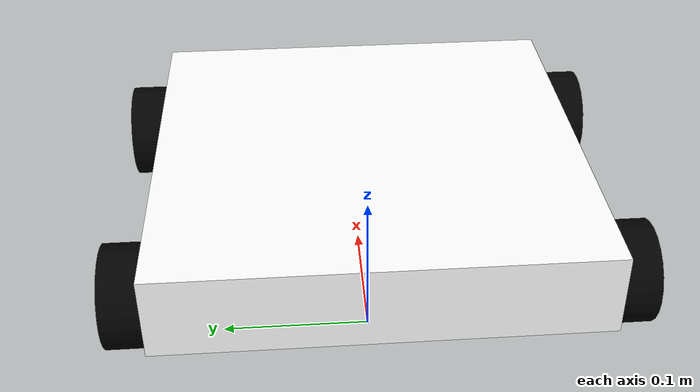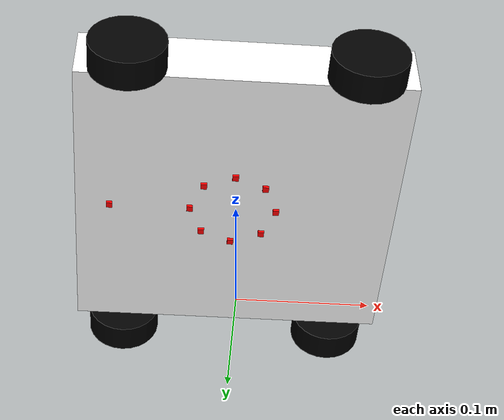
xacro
<?xml version="1.0"?>
<robot name="milo" xmlns:xacro="http://www.ros.org/wiki/xacro" xmlns:gz="http://gazebosim.org/schema">

  <!-- Include useful macros -->
  <xacro:include filename="inertial_macros.xacro" />
  <xacro:include filename="colors.xacro" />

  <!-- Define the robot's properties -->
  <xacro:property name="chassis_length" value="0.26" />
  <xacro:property name="chassis_width" value="0.26" />
  <xacro:property name="chassis_height" value="0.05" />
  <xacro:property name="chassis_mass" value="0.350" />
  <xacro:property name="wheel_axis_offset_x" value="0.04" />
  <xacro:property name="wheel_axis_offset_z" value="0.01" />
  <xacro:property name="wheel_radius" value="0.03" />
  <xacro:property name="wheel_thickness" value="0.025" />
  <xacro:property name="ldr_height" value="0.005" />
  <xacro:property name="ldr_radius" value="0.035"/>

  <!-- World link without inertia required by rviz -->
  <link name="base_link">
  </link>

  <!-- CHASSIS -->
  <joint name="chassis_joint" type="fixed">
    <parent link="base_link" />
    <child link="chassis_link" />
    <origin xyz="${-chassis_length/2} 0.0 0.1" rpy="0.0 0.0 0.0" />
  </joint>

  <link name="chassis_link">
    <visual>
      <geometry>
        <box size="${chassis_length} ${chassis_width} ${chassis_height}" />
      </geometry>
      <origin xyz="${chassis_length/2} 0 ${chassis_height/2}" />
      <material name="white" />
    </visual>
    <collision>
      <geometry>
        <box size="${chassis_length} ${chassis_width} ${chassis_height}" />
      </geometry>
      <origin xyz="${chassis_length/2} 0 ${chassis_height/2}" />
    </collision>
    <xacro:inertial_box mass="${chassis_mass}" x="${chassis_length}" y="${chassis_width}"
      z="${chassis_height}">
      <origin xyz="${chassis_length/2} 0 ${chassis_height/2}" />
    </xacro:inertial_box>
  </link>

  <!-- Chassis center link to link the LDRs to -->
  <joint name="chassis_center_joint" type="fixed">
    <parent link="chassis_link"/>
    <child link="chassis_center_link"/>
    <origin xyz="${chassis_length/2} 0 0" rpy="0 0 0"/>
  </joint>

  <link name="chassis_center_link"></link>

  <!-- WHEELS (looked at from the front of the robot) -->
  <joint name="BR_wheel_joint" type="continuous">
    <parent link="chassis_link" />
    <child link="BR_wheel_link" />
    <origin xyz="${wheel_axis_offset_x} ${chassis_width/2 + wheel_thickness} ${wheel_axis_offset_z}" rpy="${-pi/2} 0 0" />
    <axis xyz="0.0 0.0 -1.0" />
    <limit effort="10000" velocity="10"/>
  </joint>

  <link name="BR_wheel_link">
    <visual>
      <geometry>
        <cylinder radius="${wheel_radius}" length="${wheel_thickness}" />
      </geometry>
      <origin xyz="0 0 ${-wheel_thickness/2}" />
      <material name="black" />
    </visual>
    <collision>
      <geometry>
        <cylinder radius="${wheel_radius}" length="${wheel_thickness}" />
      </geometry>
      <origin xyz="0 0 ${-wheel_thickness/2}" />
    </collision>
    <xacro:inertial_cylinder mass="0.020" radius="${wheel_radius}" length="${wheel_thickness}">
      <origin xyz="0 0 ${-wheel_thickness/2}" />
    </xacro:inertial_cylinder>
  </link>

  <joint name="BL_wheel_joint" type="continuous">
    <parent link="chassis_link" />
    <child link="BL_wheel_link" />
    <origin xyz="${wheel_axis_offset_x} ${-chassis_width/2} ${wheel_axis_offset_z}"
      rpy="${pi/2} 0 0" />
    <axis xyz="0.0 0.0 1.0" />
    <limit effort="10000" velocity="10"/>
  </joint>

  <link name="BL_wheel_link">
    <visual>
      <geometry>
        <cylinder radius="${wheel_radius}" length="${wheel_thickness}" />
      </geometry>
      <origin xyz="0 0 ${wheel_thickness/2}" />
      <material name="black" />
    </visual>
    <collision>
      <geometry>
        <cylinder radius="${wheel_radius}" length="${wheel_thickness}" />
      </geometry>
      <origin xyz="0 0 ${wheel_thickness/2}" />
    </collision>
    <xacro:inertial_cylinder mass="0.020" radius="${wheel_radius}" length="${wheel_thickness}">
      <origin xyz="0 0 ${wheel_thickness/2}" />
    </xacro:inertial_cylinder>
  </link>

  <joint name="FL_wheel_joint" type="continuous">
    <parent link="chassis_link" />
    <child link="FL_wheel_link" />
    <origin xyz="${chassis_length - wheel_axis_offset_x} ${-chassis_width/2} ${wheel_axis_offset_z}"
      rpy="${pi/2} 0 0" />
    <axis xyz="0.0 0.0 1.0" />
    <limit effort="10000" velocity="10"/>
  </joint>

  <link name="FL_wheel_link">
    <visual>
      <geometry>
        <cylinder radius="${wheel_radius}" length="${wheel_thickness}" />
      </geometry>
      <origin xyz="0 0 ${wheel_thickness/2}" />
      <material name="black" />
    </visual>
    <collision>
      <geometry>
        <cylinder radius="${wheel_radius}" length="${wheel_thickness}" />
      </geometry>
      <origin xyz="0 0 ${wheel_thickness/2}" />
    </collision>
    <xacro:inertial_cylinder mass="0.020" radius="${wheel_radius}" length="${wheel_thickness}">
      <origin xyz="0 0 ${wheel_thickness/2}" />
    </xacro:inertial_cylinder>
  </link>

  <joint name="FR_wheel_joint" type="continuous">
    <parent link="chassis_link" />
    <child link="FR_wheel_link" />
    <origin xyz="${chassis_length - wheel_axis_offset_x} ${chassis_width/2 + wheel_thickness} ${wheel_axis_offset_z}"
      rpy="${-pi/2} 0 0" />
    <axis xyz="0.0 0.0 -1.0" />
    <limit effort="10000" velocity="10"/>
  </joint>

  <link name="FR_wheel_link">
    <visual>
      <geometry>
        <cylinder radius="${wheel_radius}" length="${wheel_thickness}" />
      </geometry>
      <origin xyz="0 0 ${-wheel_thickness/2}" />
      <material name="black" />
    </visual>
    <collision>
      <geometry>
        <cylinder radius="${wheel_radius}" length="${wheel_thickness}" />
      </geometry>
      <origin xyz="0 0 ${-wheel_thickness/2}" />
    </collision>
    <xacro:inertial_cylinder mass="0.020" length="${wheel_thickness}" radius="${wheel_radius}">
      <origin xyz="0 0 ${-wheel_thickness/2}" />
    </xacro:inertial_cylinder>
  </link>

  <!-- LDR PLACEMENTS -->
  <xacro:macro name="ldr_joint_and_link" params="name angle radius">
    <joint name="${name}_joint" type="fixed">
      <parent link="chassis_center_link"/>
      <child link="${name}_link"/>
      <origin xyz="${radius * cos(angle)} ${radius * sin(angle)} 0" rpy="0 ${pi/2} 0"/>
    </joint>

    <link name="${name}_link">
      <visual>
        <geometry>
          <box size="${ldr_height} ${ldr_height} ${ldr_height}"/>
        </geometry>
        <material name="red"/>
        <origin xyz="0 0 ${-ldr_height/2}"/>
      </visual>

      <collision>
        <geometry>
          <box size="${ldr_height} ${ldr_height} ${ldr_height}"/>
        </geometry>
      </collision>

      <xacro:inertial_box mass="0.001" x="${ldr_height}" y="${ldr_height}" z="${ldr_height}">
        <origin xyz="0 0 ${-ldr_height/2}"/>
      </xacro:inertial_box>
    </link>
  </xacro:macro>

  <xacro:ldr_joint_and_link name="ldr1" angle="${pi}" radius="${ldr_radius}"/>
  <xacro:ldr_joint_and_link name="ldr2" angle="${5*pi/4}" radius="${ldr_radius}"/>
  <xacro:ldr_joint_and_link name="ldr3" angle="${3*pi/2}" radius="${ldr_radius}"/>
  <xacro:ldr_joint_and_link name="ldr4" angle="${7*pi/4}" radius="${ldr_radius}"/>
  <xacro:ldr_joint_and_link name="ldr5" angle="0" radius="${ldr_radius}"/>
  <xacro:ldr_joint_and_link name="ldr6" angle="${pi/4}" radius="${ldr_radius}"/>
  <xacro:ldr_joint_and_link name="ldr7" angle="${pi/2}" radius="${ldr_radius}"/>
  <xacro:ldr_joint_and_link name="ldr8" angle="${3*pi/4}" radius="${ldr_radius}"/>

  <xacro:ldr_joint_and_link name="ldr9" angle="${pi}" radius="0.10"/>

  <!-- GAZEBO information -->
  <gazebo>
    <plugin
      filename="gz-sim-mecanum-drive-system"
      name="gz::sim::systems::MecanumDrive">
      <front_left_joint>FL_wheel_joint</front_left_joint>
      <front_right_joint>FR_wheel_joint</front_right_joint>
      <back_left_joint>BL_wheel_joint</back_left_joint>
      <back_right_joint>BR_wheel_joint</back_right_joint>
      <wheel_separation>0.26</wheel_separation> <!-- Chassis width -->
      <wheelbase>0.18</wheelbase> <!-- Chassis length - 2*wheel_offset_x -->
      <wheel_radius>0.03</wheel_radius>
      <min_acceleration>-10</min_acceleration>
      <max_acceleration>10</max_acceleration>
    </plugin>
  </gazebo>

  <gazebo reference="ldr1_link">
    <sensor name="0" type="camera">
      <camera>
        <horizontal_fov>1.25</horizontal_fov>
        <image>
          <width>6</width>
          <height>6</height>
        </image>
        <clip> <!-- The range of the camera-->
          <near>0.01</near>
          <far>0.2</far>
        </clip>
        <noise>
          <type>gaussian</type>
          <mean>0.0</mean>
          <stddev>0.2</stddev>
        </noise>
      </camera>
      <topic>milo/ldr1</topic>
      <update_rate>30</update_rate>
    </sensor>
  </gazebo>

  <gazebo reference="ldr2_link">
    <sensor name="1" type="camera">
      <camera>
        <horizontal_fov>1.25</horizontal_fov>
        <image>
          <width>6</width>
          <height>6</height>
        </image>
        <clip> <!-- The range of the camera-->
          <near>0.01</near>
          <far>0.2</far>
        </clip>
        <noise>
          <type>gaussian</type>
          <mean>0.0</mean>
          <stddev>0.2</stddev>
        </noise>
      </camera>
      <topic>milo/ldr2</topic>
      <update_rate>30</update_rate>
    </sensor>
  </gazebo>

  <gazebo reference="ldr3_link">
    <sensor name="2" type="camera">
      <camera>
        <horizontal_fov>1.25</horizontal_fov>
        <image>
          <width>6</width>
          <height>6</height>
        </image>
        <clip> <!-- The range of the camera-->
          <near>0.01</near>
          <far>0.2</far>
        </clip>
        <noise>
          <type>gaussian</type>
          <mean>0.0</mean>
          <stddev>0.2</stddev>
        </noise>
      </camera>
      <topic>milo/ldr3</topic>
      <update_rate>30</update_rate>
    </sensor>
  </gazebo>

  <gazebo reference="ldr4_link">
    <sensor name="3" type="camera">
      <camera>
        <horizontal_fov>1.25</horizontal_fov>
        <image>
          <width>6</width>
          <height>6</height>
        </image>
        <clip> <!-- The range of the camera-->
          <near>0.01</near>
          <far>0.2</far>
        </clip>
        <noise>
          <type>gaussian</type>
          <mean>0.0</mean>
          <stddev>0.2</stddev>
        </noise>
      </camera>
      <topic>milo/ldr4</topic>
      <update_rate>30</update_rate>
    </sensor>
  </gazebo>

  <gazebo reference="ldr5_link">
    <sensor name="4" type="camera">
      <camera>
        <horizontal_fov>1.25</horizontal_fov>
        <image>
          <width>6</width>
          <height>6</height>
        </image>
        <clip> <!-- The range of the camera-->
          <near>0.01</near>
          <far>0.2</far>
        </clip>
        <noise>
          <type>gaussian</type>
          <mean>0.0</mean>
          <stddev>0.2</stddev>
        </noise>
      </camera>
      <topic>milo/ldr5</topic>
      <update_rate>30</update_rate>
    </sensor>
  </gazebo>

  <gazebo reference="ldr6_link">
    <sensor name="5" type="camera">
      <camera>
        <horizontal_fov>1.25</horizontal_fov>
        <image>
          <width>6</width>
          <height>6</height>
        </image>
        <clip> <!-- The range of the camera-->
          <near>0.01</near>
          <far>0.2</far>
        </clip>
        <noise>
          <type>gaussian</type>
          <mean>0.0</mean>
          <stddev>0.2</stddev>
        </noise>
      </camera>
      <topic>milo/ldr6</topic>
      <update_rate>30</update_rate>
    </sensor>
  </gazebo>

  <gazebo reference="ldr7_link">
    <sensor name="6" type="camera">
      <camera>
        <horizontal_fov>1.25</horizontal_fov>
        <image>
          <width>6</width>
          <height>6</height>
        </image>
        <clip> <!-- The range of the camera-->
          <near>0.01</near>
          <far>0.2</far>
        </clip>
        <noise>
          <type>gaussian</type>
          <mean>0.0</mean>
          <stddev>0.2</stddev>
        </noise>
      </camera>
      <topic>milo/ldr7</topic>
      <update_rate>30</update_rate>
    </sensor>
  </gazebo>

  <gazebo reference="ldr8_link">
    <sensor name="7" type="camera">
      <camera>
        <horizontal_fov>1.25</horizontal_fov>
        <image>
          <width>6</width>
          <height>6</height>
        </image>
        <clip> <!-- The range of the camera-->
          <near>0.01</near>
          <far>0.2</far>
        </clip>
        <noise>
          <type>gaussian</type>
          <mean>0.0</mean>
          <stddev>0.2</stddev>
        </noise>
      </camera>
      <topic>milo/ldr8</topic>
      <update_rate>30</update_rate>
    </sensor>
  </gazebo>

  <gazebo reference="ldr9_link">
    <sensor name="8" type="camera">
      <camera>
        <horizontal_fov>1.25</horizontal_fov>
        <image>
          <width>6</width>
          <height>6</height>
        </image>
        <clip>
          <near>0.01</near>
          <far>0.2</far>
        </clip>
        <noise>
          <type>gaussian</type>
          <mean>0.0</mean>
          <stddev>0.2</stddev>
        </noise>
      </camera>
      <topic>milo/ldr9</topic>
      <update_rate>20</update_rate>
    </sensor>
  </gazebo>

  <!-- STEP 6 - Gazebo frictions and colors -->
  <gazebo reference='FL_wheel_link'>
    <collision>
      <surface>
        <friction>
          <ode>
            <mu>0.8</mu>
            <mu2>0.5</mu2>
            <fdir1 gz:expressed_in="base_link">1 -1 0</fdir1>
          </ode>
        </friction>
      </surface>
    </collision>
  </gazebo>

  <gazebo reference='BL_wheel_link'>
    <collision>
      <surface>
        <friction>
          <ode>
            <mu>0.8</mu>
            <mu2>0.5</mu2>
            <fdir1 gz:expressed_in="base_link">1 1 0</fdir1>
          </ode>
        </friction>
      </surface>
    </collision>
  </gazebo>

  <gazebo reference='FR_wheel_link'>
    <collision>
      <surface>
        <friction>
          <ode>
            <mu>0.8</mu>
            <mu2>0.5</mu2>
            <fdir1 gz:expressed_in="base_link">1 1 0</fdir1>
          </ode>
        </friction>
      </surface>
    </collision>
  </gazebo>

  <gazebo reference='BR_wheel_link'>
    <collision>
      <surface>
        <friction>
          <ode>
            <mu>0.8</mu>
            <mu2>0.5</mu2>
            <fdir1 gz:expressed_in="base_link">1 -1 0</fdir1>
          </ode>
        </friction>
      </surface>
    </collision>
  </gazebo>

  <gazebo reference="chassis_link">
    <mu1>0.000002</mu1>
    <mu2>0.000002</mu2>
  </gazebo>
</robot>

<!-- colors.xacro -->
<robot >
  <material name="white">
      <color rgba="1 1 1 1" />
  </material>

  <material name="orange">
      <color rgba="1 0.3 0.1 1"/>
  </material>

  <material name="blue">
      <color rgba="0.2 0.2 1 1"/>
  </material>

  <material name="black">
      <color rgba="0 0 0 1"/>
  </material>

  <material name="red">
      <color rgba="1 0 0 1"/>
  </material>
</robot>
